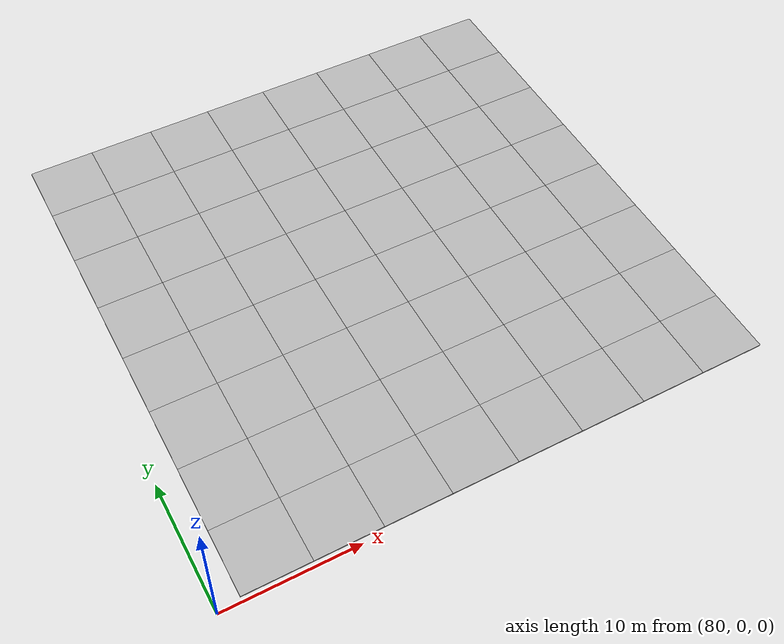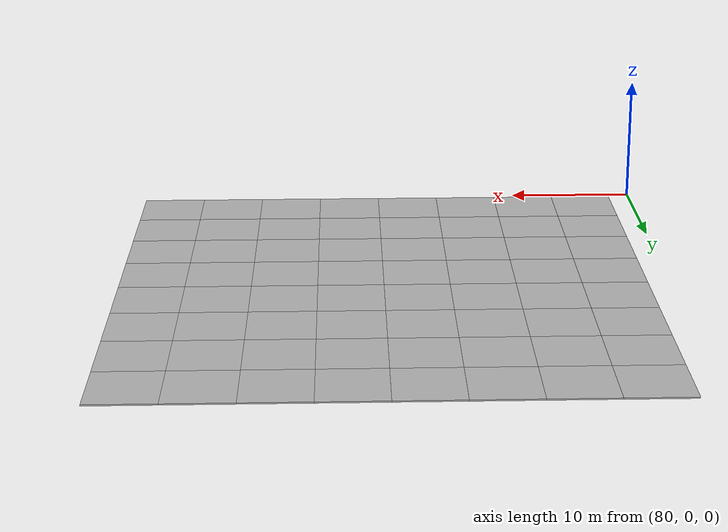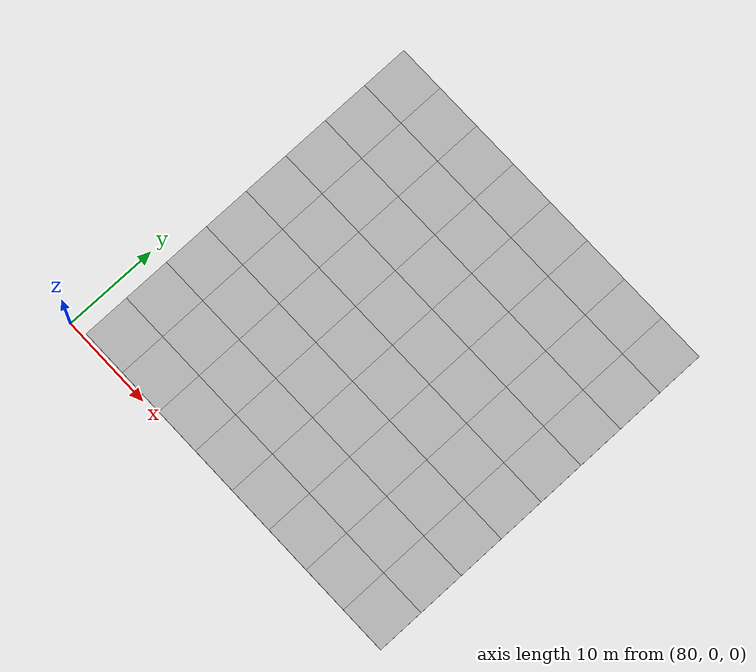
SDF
<sdf version="1.7">
 <world name="default">
  <model name="mud_plane_80x80_6">
   <model name="mud_plane_40x40_2">
    <model name="mud_plane_20x20">
     <model name="mud_plane">
      <static>1</static>
      <link name="link">
       <collision name="collision"><geometry><box><size>10 10 0.1</size></box></geometry></collision>
       <visual name="visual_1">
        <pose>-2.5 2.5 -0.05 0 -0 0</pose>
        <cast_shadows>0</cast_shadows>
        <geometry><box><size>5 5 0.1</size></box></geometry>
        <material>
         <script>
          <uri>model://mud_plane/materials/scripts</uri>
          <uri>model://mud_plane/materials/textures</uri>
          <name>vrc/mud</name>
         </script>
        </material>
       </visual>
       <visual name="visual_2">
        <pose>2.5 2.5 -0.05 0 -0 0</pose>
        <cast_shadows>0</cast_shadows>
        <geometry><box><size>5 5 0.1</size></box></geometry>
        <material>
         <script>
          <uri>model://mud_plane/materials/scripts</uri>
          <uri>model://mud_plane/materials/textures</uri>
          <name>vrc/mud</name>
         </script>
        </material>
       </visual>
       <visual name="visual_3">
        <pose>2.5 -2.5 -0.05 0 -0 0</pose>
        <cast_shadows>0</cast_shadows>
        <geometry><box><size>5 5 0.1</size></box></geometry>
        <material>
         <script>
          <uri>model://mud_plane/materials/scripts</uri>
          <uri>model://mud_plane/materials/textures</uri>
          <name>vrc/mud</name>
         </script>
        </material>
       </visual>
       <visual name="visual_4">
        <pose>-2.5 -2.5 -0.05 0 -0 0</pose>
        <cast_shadows>0</cast_shadows>
        <geometry><box><size>5 5 0.1</size></box></geometry>
        <material>
         <script>
          <uri>model://mud_plane/materials/scripts</uri>
          <uri>model://mud_plane/materials/textures</uri>
          <name>vrc/mud</name>
         </script>
        </material>
       </visual>
      </link>
      <pose>-4.99986 -4.99991 0 0 -0 0</pose>
     </model>
     <model name="mud_plane_0">
      <static>1</static>
      <link name="link">
       <collision name="collision"><geometry><box><size>10 10 0.1</size></box></geometry></collision>
       <visual name="visual_1">
        <pose>-2.5 2.5 -0.05 0 -0 0</pose>
        <cast_shadows>0</cast_shadows>
        <geometry><box><size>5 5 0.1</size></box></geometry>
        <material>
         <script>
          <uri>model://mud_plane/materials/scripts</uri>
          <uri>model://mud_plane/materials/textures</uri>
          <name>vrc/mud</name>
         </script>
        </material>
       </visual>
       <visual name="visual_2">
        <pose>2.5 2.5 -0.05 0 -0 0</pose>
        <cast_shadows>0</cast_shadows>
        <geometry><box><size>5 5 0.1</size></box></geometry>
        <material>
         <script>
          <uri>model://mud_plane/materials/scripts</uri>
          <uri>model://mud_plane/materials/textures</uri>
          <name>vrc/mud</name>
         </script>
        </material>
       </visual>
       <visual name="visual_3">
        <pose>2.5 -2.5 -0.05 0 -0 0</pose>
        <cast_shadows>0</cast_shadows>
        <geometry><box><size>5 5 0.1</size></box></geometry>
        <material>
         <script>
          <uri>model://mud_plane/materials/scripts</uri>
          <uri>model://mud_plane/materials/textures</uri>
          <name>vrc/mud</name>
         </script>
        </material>
       </visual>
       <visual name="visual_4">
        <pose>-2.5 -2.5 -0.05 0 -0 0</pose>
        <cast_shadows>0</cast_shadows>
        <geometry><box><size>5 5 0.1</size></box></geometry>
        <material>
         <script>
          <uri>model://mud_plane/materials/scripts</uri>
          <uri>model://mud_plane/materials/textures</uri>
          <name>vrc/mud</name>
         </script>
        </material>
       </visual>
      </link>
      <pose>-4.99946 4.99954 0 0 -0 0</pose>
     </model>
     <model name="mud_plane_1">
      <static>1</static>
      <link name="link">
       <collision name="collision"><geometry><box><size>10 10 0.1</size></box></geometry></collision>
       <visual name="visual_1">
        <pose>-2.5 2.5 -0.05 0 -0 0</pose>
        <cast_shadows>0</cast_shadows>
        <geometry><box><size>5 5 0.1</size></box></geometry>
        <material>
         <script>
          <uri>model://mud_plane/materials/scripts</uri>
          <uri>model://mud_plane/materials/textures</uri>
          <name>vrc/mud</name>
         </script>
        </material>
       </visual>
       <visual name="visual_2">
        <pose>2.5 2.5 -0.05 0 -0 0</pose>
        <cast_shadows>0</cast_shadows>
        <geometry><box><size>5 5 0.1</size></box></geometry>
        <material>
         <script>
          <uri>model://mud_plane/materials/scripts</uri>
          <uri>model://mud_plane/materials/textures</uri>
          <name>vrc/mud</name>
         </script>
        </material>
       </visual>
       <visual name="visual_3">
        <pose>2.5 -2.5 -0.05 0 -0 0</pose>
        <cast_shadows>0</cast_shadows>
        <geometry><box><size>5 5 0.1</size></box></geometry>
        <material>
         <script>
          <uri>model://mud_plane/materials/scripts</uri>
          <uri>model://mud_plane/materials/textures</uri>
          <name>vrc/mud</name>
         </script>
        </material>
       </visual>
       <visual name="visual_4">
        <pose>-2.5 -2.5 -0.05 0 -0 0</pose>
        <cast_shadows>0</cast_shadows>
        <geometry><box><size>5 5 0.1</size></box></geometry>
        <material>
         <script>
          <uri>model://mud_plane/materials/scripts</uri>
          <uri>model://mud_plane/materials/textures</uri>
          <name>vrc/mud</name>
         </script>
        </material>
       </visual>
      </link>
      <pose>4.99964 -4.99949 0 0 -0 0</pose>
     </model>
     <model name="mud_plane_2">
      <static>1</static>
      <link name="link">
       <collision name="collision"><geometry><box><size>10 10 0.1</size></box></geometry></collision>
       <visual name="visual_1">
        <pose>-2.5 2.5 -0.05 0 -0 0</pose>
        <cast_shadows>0</cast_shadows>
        <geometry><box><size>5 5 0.1</size></box></geometry>
        <material>
         <script>
          <uri>model://mud_plane/materials/scripts</uri>
          <uri>model://mud_plane/materials/textures</uri>
          <name>vrc/mud</name>
         </script>
        </material>
       </visual>
       <visual name="visual_2">
        <pose>2.5 2.5 -0.05 0 -0 0</pose>
        <cast_shadows>0</cast_shadows>
        <geometry><box><size>5 5 0.1</size></box></geometry>
        <material>
         <script>
          <uri>model://mud_plane/materials/scripts</uri>
          <uri>model://mud_plane/materials/textures</uri>
          <name>vrc/mud</name>
         </script>
        </material>
       </visual>
       <visual name="visual_3">
        <pose>2.5 -2.5 -0.05 0 -0 0</pose>
        <cast_shadows>0</cast_shadows>
        <geometry><box><size>5 5 0.1</size></box></geometry>
        <material>
         <script>
          <uri>model://mud_plane/materials/scripts</uri>
          <uri>model://mud_plane/materials/textures</uri>
          <name>vrc/mud</name>
         </script>
        </material>
       </visual>
       <visual name="visual_4">
        <pose>-2.5 -2.5 -0.05 0 -0 0</pose>
        <cast_shadows>0</cast_shadows>
        <geometry><box><size>5 5 0.1</size></box></geometry>
        <material>
         <script>
          <uri>model://mud_plane/materials/scripts</uri>
          <uri>model://mud_plane/materials/textures</uri>
          <name>vrc/mud</name>
         </script>
        </material>
       </visual>
      </link>
      <pose>4.99967 4.99986 0 0 -0 0</pose>
     </model>
     <static>0</static>
     <pose>-9.99895 9.99843 0 0 -0 0</pose>
    </model>
    <model name="mud_plane_20x20_0">
     <model name="mud_plane">
      <static>1</static>
      <link name="link">
       <collision name="collision"><geometry><box><size>10 10 0.1</size></box></geometry></collision>
       <visual name="visual_1">
        <pose>-2.5 2.5 -0.05 0 -0 0</pose>
        <cast_shadows>0</cast_shadows>
        <geometry><box><size>5 5 0.1</size></box></geometry>
        <material>
         <script>
          <uri>model://mud_plane/materials/scripts</uri>
          <uri>model://mud_plane/materials/textures</uri>
          <name>vrc/mud</name>
         </script>
        </material>
       </visual>
       <visual name="visual_2">
        <pose>2.5 2.5 -0.05 0 -0 0</pose>
        <cast_shadows>0</cast_shadows>
        <geometry><box><size>5 5 0.1</size></box></geometry>
        <material>
         <script>
          <uri>model://mud_plane/materials/scripts</uri>
          <uri>model://mud_plane/materials/textures</uri>
          <name>vrc/mud</name>
         </script>
        </material>
       </visual>
       <visual name="visual_3">
        <pose>2.5 -2.5 -0.05 0 -0 0</pose>
        <cast_shadows>0</cast_shadows>
        <geometry><box><size>5 5 0.1</size></box></geometry>
        <material>
         <script>
          <uri>model://mud_plane/materials/scripts</uri>
          <uri>model://mud_plane/materials/textures</uri>
          <name>vrc/mud</name>
         </script>
        </material>
       </visual>
       <visual name="visual_4">
        <pose>-2.5 -2.5 -0.05 0 -0 0</pose>
        <cast_shadows>0</cast_shadows>
        <geometry><box><size>5 5 0.1</size></box></geometry>
        <material>
         <script>
          <uri>model://mud_plane/materials/scripts</uri>
          <uri>model://mud_plane/materials/textures</uri>
          <name>vrc/mud</name>
         </script>
        </material>
       </visual>
      </link>
      <pose>-4.99986 -4.99991 0 0 -0 0</pose>
     </model>
     <model name="mud_plane_0">
      <static>1</static>
      <link name="link">
       <collision name="collision"><geometry><box><size>10 10 0.1</size></box></geometry></collision>
       <visual name="visual_1">
        <pose>-2.5 2.5 -0.05 0 -0 0</pose>
        <cast_shadows>0</cast_shadows>
        <geometry><box><size>5 5 0.1</size></box></geometry>
        <material>
         <script>
          <uri>model://mud_plane/materials/scripts</uri>
          <uri>model://mud_plane/materials/textures</uri>
          <name>vrc/mud</name>
         </script>
        </material>
       </visual>
       <visual name="visual_2">
        <pose>2.5 2.5 -0.05 0 -0 0</pose>
        <cast_shadows>0</cast_shadows>
        <geometry><box><size>5 5 0.1</size></box></geometry>
        <material>
         <script>
          <uri>model://mud_plane/materials/scripts</uri>
          <uri>model://mud_plane/materials/textures</uri>
          <name>vrc/mud</name>
         </script>
        </material>
       </visual>
       <visual name="visual_3">
        <pose>2.5 -2.5 -0.05 0 -0 0</pose>
        <cast_shadows>0</cast_shadows>
        <geometry><box><size>5 5 0.1</size></box></geometry>
        <material>
         <script>
          <uri>model://mud_plane/materials/scripts</uri>
          <uri>model://mud_plane/materials/textures</uri>
          <name>vrc/mud</name>
         </script>
        </material>
       </visual>
       <visual name="visual_4">
        <pose>-2.5 -2.5 -0.05 0 -0 0</pose>
        <cast_shadows>0</cast_shadows>
        <geometry><box><size>5 5 0.1</size></box></geometry>
        <material>
         <script>
          <uri>model://mud_plane/materials/scripts</uri>
          <uri>model://mud_plane/materials/textures</uri>
          <name>vrc/mud</name>
         </script>
        </material>
       </visual>
      </link>
      <pose>-4.99946 4.99954 0 0 -0 0</pose>
     </model>
     <model name="mud_plane_1">
      <static>1</static>
      <link name="link">
       <collision name="collision"><geometry><box><size>10 10 0.1</size></box></geometry></collision>
       <visual name="visual_1">
        <pose>-2.5 2.5 -0.05 0 -0 0</pose>
        <cast_shadows>0</cast_shadows>
        <geometry><box><size>5 5 0.1</size></box></geometry>
        <material>
         <script>
          <uri>model://mud_plane/materials/scripts</uri>
          <uri>model://mud_plane/materials/textures</uri>
          <name>vrc/mud</name>
         </script>
        </material>
       </visual>
       <visual name="visual_2">
        <pose>2.5 2.5 -0.05 0 -0 0</pose>
        <cast_shadows>0</cast_shadows>
        <geometry><box><size>5 5 0.1</size></box></geometry>
        <material>
         <script>
          <uri>model://mud_plane/materials/scripts</uri>
          <uri>model://mud_plane/materials/textures</uri>
          <name>vrc/mud</name>
         </script>
        </material>
       </visual>
       <visual name="visual_3">
        <pose>2.5 -2.5 -0.05 0 -0 0</pose>
        <cast_shadows>0</cast_shadows>
        <geometry><box><size>5 5 0.1</size></box></geometry>
        <material>
         <script>
          <uri>model://mud_plane/materials/scripts</uri>
          <uri>model://mud_plane/materials/textures</uri>
          <name>vrc/mud</name>
         </script>
        </material>
       </visual>
       <visual name="visual_4">
        <pose>-2.5 -2.5 -0.05 0 -0 0</pose>
        <cast_shadows>0</cast_shadows>
        <geometry><box><size>5 5 0.1</size></box></geometry>
        <material>
         <script>
          <uri>model://mud_plane/materials/scripts</uri>
          <uri>model://mud_plane/materials/textures</uri>
          <name>vrc/mud</name>
         </script>
        </material>
       </visual>
      </link>
      <pose>4.99964 -4.99949 0 0 -0 0</pose>
     </model>
     <model name="mud_plane_2">
      <static>1</static>
      <link name="link">
       <collision name="collision"><geometry><box><size>10 10 0.1</size></box></geometry></collision>
       <visual name="visual_1">
        <pose>-2.5 2.5 -0.05 0 -0 0</pose>
        <cast_shadows>0</cast_shadows>
        <geometry><box><size>5 5 0.1</size></box></geometry>
        <material>
         <script>
          <uri>model://mud_plane/materials/scripts</uri>
          <uri>model://mud_plane/materials/textures</uri>
          <name>vrc/mud</name>
         </script>
        </material>
       </visual>
       <visual name="visual_2">
        <pose>2.5 2.5 -0.05 0 -0 0</pose>
        <cast_shadows>0</cast_shadows>
        <geometry><box><size>5 5 0.1</size></box></geometry>
        <material>
         <script>
          <uri>model://mud_plane/materials/scripts</uri>
          <uri>model://mud_plane/materials/textures</uri>
          <name>vrc/mud</name>
         </script>
        </material>
       </visual>
       <visual name="visual_3">
        <pose>2.5 -2.5 -0.05 0 -0 0</pose>
        <cast_shadows>0</cast_shadows>
        <geometry><box><size>5 5 0.1</size></box></geometry>
        <material>
         <script>
          <uri>model://mud_plane/materials/scripts</uri>
          <uri>model://mud_plane/materials/textures</uri>
          <name>vrc/mud</name>
         </script>
        </material>
       </visual>
       <visual name="visual_4">
        <pose>-2.5 -2.5 -0.05 0 -0 0</pose>
        <cast_shadows>0</cast_shadows>
        <geometry><box><size>5 5 0.1</size></box></geometry>
        <material>
         <script>
          <uri>model://mud_plane/materials/scripts</uri>
          <uri>model://mud_plane/materials/textures</uri>
          <name>vrc/mud</name>
         </script>
        </material>
       </visual>
      </link>
      <pose>4.99967 4.99986 0 0 -0 0</pose>
     </model>
     <static>0</static>
     <pose>9.99933 9.9997 0 0 -0 0</pose>
    </model>
    <model name="mud_plane_20x20_1">
     <model name="mud_plane">
      <static>1</static>
      <link name="link">
       <collision name="collision"><geometry><box><size>10 10 0.1</size></box></geometry></collision>
       <visual name="visual_1">
        <pose>-2.5 2.5 -0.05 0 -0 0</pose>
        <cast_shadows>0</cast_shadows>
        <geometry><box><size>5 5 0.1</size></box></geometry>
        <material>
         <script>
          <uri>model://mud_plane/materials/scripts</uri>
          <uri>model://mud_plane/materials/textures</uri>
          <name>vrc/mud</name>
         </script>
        </material>
       </visual>
       <visual name="visual_2">
        <pose>2.5 2.5 -0.05 0 -0 0</pose>
        <cast_shadows>0</cast_shadows>
        <geometry><box><size>5 5 0.1</size></box></geometry>
        <material>
         <script>
          <uri>model://mud_plane/materials/scripts</uri>
          <uri>model://mud_plane/materials/textures</uri>
          <name>vrc/mud</name>
         </script>
        </material>
       </visual>
       <visual name="visual_3">
        <pose>2.5 -2.5 -0.05 0 -0 0</pose>
        <cast_shadows>0</cast_shadows>
        <geometry><box><size>5 5 0.1</size></box></geometry>
        <material>
         <script>
          <uri>model://mud_plane/materials/scripts</uri>
          <uri>model://mud_plane/materials/textures</uri>
          <name>vrc/mud</name>
         </script>
        </material>
       </visual>
       <visual name="visual_4">
        <pose>-2.5 -2.5 -0.05 0 -0 0</pose>
        <cast_shadows>0</cast_shadows>
        <geometry><box><size>5 5 0.1</size></box></geometry>
        <material>
         <script>
          <uri>model://mud_plane/materials/scripts</uri>
          <uri>model://mud_plane/materials/textures</uri>
          <name>vrc/mud</name>
         </script>
        </material>
       </visual>
      </link>
      <pose>-4.99986 -4.99991 0 0 -0 0</pose>
     </model>
     <model name="mud_plane_0">
      <static>1</static>
      <link name="link">
       <collision name="collision"><geometry><box><size>10 10 0.1</size></box></geometry></collision>
       <visual name="visual_1">
        <pose>-2.5 2.5 -0.05 0 -0 0</pose>
        <cast_shadows>0</cast_shadows>
        <geometry><box><size>5 5 0.1</size></box></geometry>
        <material>
         <script>
          <uri>model://mud_plane/materials/scripts</uri>
          <uri>model://mud_plane/materials/textures</uri>
          <name>vrc/mud</name>
         </script>
        </material>
       </visual>
       <visual name="visual_2">
        <pose>2.5 2.5 -0.05 0 -0 0</pose>
        <cast_shadows>0</cast_shadows>
        <geometry><box><size>5 5 0.1</size></box></geometry>
        <material>
         <script>
          <uri>model://mud_plane/materials/scripts</uri>
          <uri>model://mud_plane/materials/textures</uri>
          <name>vrc/mud</name>
         </script>
        </material>
       </visual>
       <visual name="visual_3">
        <pose>2.5 -2.5 -0.05 0 -0 0</pose>
        <cast_shadows>0</cast_shadows>
        <geometry><box><size>5 5 0.1</size></box></geometry>
        <material>
         <script>
          <uri>model://mud_plane/materials/scripts</uri>
          <uri>model://mud_plane/materials/textures</uri>
          <name>vrc/mud</name>
         </script>
        </material>
       </visual>
       <visual name="visual_4">
        <pose>-2.5 -2.5 -0.05 0 -0 0</pose>
        <cast_shadows>0</cast_shadows>
        <geometry><box><size>5 5 0.1</size></box></geometry>
        <material>
         <script>
          <uri>model://mud_plane/materials/scripts</uri>
          <uri>model://mud_plane/materials/textures</uri>
          <name>vrc/mud</name>
         </script>
        </material>
       </visual>
      </link>
      <pose>-4.99946 4.99954 0 0 -0 0</pose>
     </model>
     <model name="mud_plane_1">
      <static>1</static>
      <link name="link">
       <collision name="collision"><geometry><box><size>10 10 0.1</size></box></geometry></collision>
       <visual name="visual_1">
        <pose>-2.5 2.5 -0.05 0 -0 0</pose>
        <cast_shadows>0</cast_shadows>
        <geometry><box><size>5 5 0.1</size></box></geometry>
        <material>
         <script>
          <uri>model://mud_plane/materials/scripts</uri>
          <uri>model://mud_plane/materials/textures</uri>
          <name>vrc/mud</name>
         </script>
        </material>
       </visual>
       <visual name="visual_2">
        <pose>2.5 2.5 -0.05 0 -0 0</pose>
        <cast_shadows>0</cast_shadows>
        <geometry><box><size>5 5 0.1</size></box></geometry>
        <material>
         <script>
          <uri>model://mud_plane/materials/scripts</uri>
          <uri>model://mud_plane/materials/textures</uri>
          <name>vrc/mud</name>
         </script>
        </material>
       </visual>
       <visual name="visual_3">
        <pose>2.5 -2.5 -0.05 0 -0 0</pose>
        <cast_shadows>0</cast_shadows>
        <geometry><box><size>5 5 0.1</size></box></geometry>
        <material>
         <script>
          <uri>model://mud_plane/materials/scripts</uri>
          <uri>model://mud_plane/materials/textures</uri>
          <name>vrc/mud</name>
         </script>
        </material>
       </visual>
       <visual name="visual_4">
        <pose>-2.5 -2.5 -0.05 0 -0 0</pose>
        <cast_shadows>0</cast_shadows>
        <geometry><box><size>5 5 0.1</size></box></geometry>
        <material>
         <script>
          <uri>model://mud_plane/materials/scripts</uri>
          <uri>model://mud_plane/materials/textures</uri>
          <name>vrc/mud</name>
         </script>
        </material>
       </visual>
      </link>
      <pose>4.99964 -4.99949 0 0 -0 0</pose>
     </model>
     <model name="mud_plane_2">
      <static>1</static>
      <link name="link">
       <collision name="collision"><geometry><box><size>10 10 0.1</size></box></geometry></collision>
       <visual name="visual_1">
        <pose>-2.5 2.5 -0.05 0 -0 0</pose>
        <cast_shadows>0</cast_shadows>
        <geometry><box><size>5 5 0.1</size></box></geometry>
        <material>
         <script>
          <uri>model://mud_plane/materials/scripts</uri>
          <uri>model://mud_plane/materials/textures</uri>
          <name>vrc/mud</name>
         </script>
        </material>
       </visual>
       <visual name="visual_2">
        <pose>2.5 2.5 -0.05 0 -0 0</pose>
        <cast_shadows>0</cast_shadows>
        <geometry><box><size>5 5 0.1</size></box></geometry>
        <material>
         <script>
          <uri>model://mud_plane/materials/scripts</uri>
          <uri>model://mud_plane/materials/textures</uri>
          <name>vrc/mud</name>
         </script>
        </material>
       </visual>
       <visual name="visual_3">
        <pose>2.5 -2.5 -0.05 0 -0 0</pose>
        <cast_shadows>0</cast_shadows>
        <geometry><box><size>5 5 0.1</size></box></geometry>
        <material>
         <script>
          <uri>model://mud_plane/materials/scripts</uri>
          <uri>model://mud_plane/materials/textures</uri>
          <name>vrc/mud</name>
         </script>
        </material>
       </visual>
       <visual name="visual_4">
        <pose>-2.5 -2.5 -0.05 0 -0 0</pose>
        <cast_shadows>0</cast_shadows>
        <geometry><box><size>5 5 0.1</size></box></geometry>
        <material>
         <script>
          <uri>model://mud_plane/materials/scripts</uri>
          <uri>model://mud_plane/materials/textures</uri>
          <name>vrc/mud</name>
         </script>
        </material>
       </visual>
      </link>
      <pose>4.99967 4.99986 0 0 -0 0</pose>
     </model>
     <static>0</static>
     <pose>9.9993 -9.99877 0 0 -0 0</pose>
    </model>
    <model name="mud_plane_20x20_2">
     <model name="mud_plane">
      <static>1</static>
      <link name="link">
       <collision name="collision"><geometry><box><size>10 10 0.1</size></box></geometry></collision>
       <visual name="visual_1">
        <pose>-2.5 2.5 -0.05 0 -0 0</pose>
        <cast_shadows>0</cast_shadows>
        <geometry><box><size>5 5 0.1</size></box></geometry>
        <material>
         <script>
          <uri>model://mud_plane/materials/scripts</uri>
          <uri>model://mud_plane/materials/textures</uri>
          <name>vrc/mud</name>
         </script>
        </material>
       </visual>
       <visual name="visual_2">
        <pose>2.5 2.5 -0.05 0 -0 0</pose>
        <cast_shadows>0</cast_shadows>
        <geometry><box><size>5 5 0.1</size></box></geometry>
        <material>
         <script>
          <uri>model://mud_plane/materials/scripts</uri>
          <uri>model://mud_plane/materials/textures</uri>
          <name>vrc/mud</name>
         </script>
        </material>
       </visual>
       <visual name="visual_3">
        <pose>2.5 -2.5 -0.05 0 -0 0</pose>
        <cast_shadows>0</cast_shadows>
        <geometry><box><size>5 5 0.1</size></box></geometry>
        <material>
         <script>
          <uri>model://mud_plane/materials/scripts</uri>
          <uri>model://mud_plane/materials/textures</uri>
          <name>vrc/mud</name>
         </script>
        </material>
       </visual>
       <visual name="visual_4">
        <pose>-2.5 -2.5 -0.05 0 -0 0</pose>
        <cast_shadows>0</cast_shadows>
        <geometry><box><size>5 5 0.1</size></box></geometry>
        <material>
         <script>
          <uri>model://mud_plane/materials/scripts</uri>
          <uri>model://mud_plane/materials/textures</uri>
          <name>vrc/mud</name>
         </script>
        </material>
       </visual>
      </link>
      <pose>-4.99986 -4.99991 0 0 -0 0</pose>
     </model>
     <model name="mud_plane_0">
      <static>1</static>
      <link name="link">
       <collision name="collision"><geometry><box><size>10 10 0.1</size></box></geometry></collision>
       <visual name="visual_1">
        <pose>-2.5 2.5 -0.05 0 -0 0</pose>
        <cast_shadows>0</cast_shadows>
        <geometry><box><size>5 5 0.1</size></box></geometry>
        <material>
         <script>
          <uri>model://mud_plane/materials/scripts</uri>
          <uri>model://mud_plane/materials/textures</uri>
          <name>vrc/mud</name>
         </script>
        </material>
       </visual>
       <visual name="visual_2">
        <pose>2.5 2.5 -0.05 0 -0 0</pose>
        <cast_shadows>0</cast_shadows>
        <geometry><box><size>5 5 0.1</size></box></geometry>
        <material>
         <script>
          <uri>model://mud_plane/materials/scripts</uri>
          <uri>model://mud_plane/materials/textures</uri>
          <name>vrc/mud</name>
         </script>
        </material>
       </visual>
       <visual name="visual_3">
        <pose>2.5 -2.5 -0.05 0 -0 0</pose>
        <cast_shadows>0</cast_shadows>
        <geometry><box><size>5 5 0.1</size></box></geometry>
        <material>
         <script>
          <uri>model://mud_plane/materials/scripts</uri>
          <uri>model://mud_plane/materials/textures</uri>
          <name>vrc/mud</name>
         </script>
        </material>
       </visual>
       <visual name="visual_4">
        <pose>-2.5 -2.5 -0.05 0 -0 0</pose>
        <cast_shadows>0</cast_shadows>
        <geometry><box><size>5 5 0.1</size></box></geometry>
        <material>
         <script>
          <uri>model://mud_plane/materials/scripts</uri>
          <uri>model://mud_plane/materials/textures</uri>
          <name>vrc/mud</name>
         </script>
        </material>
       </visual>
      </link>
      <pose>-4.99946 4.99954 0 0 -0 0</pose>
     </model>
     <model name="mud_plane_1">
      <static>1</static>
      <link name="link">
       <collision name="collision"><geometry><box><size>10 10 0.1</size></box></geometry></collision>
       <visual name="visual_1">
        <pose>-2.5 2.5 -0.05 0 -0 0</pose>
        <cast_shadows>0</cast_shadows>
        <geometry><box><size>5 5 0.1</size></box></geometry>
        <material>
         <script>
          <uri>model://mud_plane/materials/scripts</uri>
          <uri>model://mud_plane/materials/textures</uri>
          <name>vrc/mud</name>
         </script>
        </material>
       </visual>
       <visual name="visual_2">
        <pose>2.5 2.5 -0.05 0 -0 0</pose>
        <cast_shadows>0</cast_shadows>
        <geometry><box><size>5 5 0.1</size></box></geometry>
        <material>
         <script>
          <uri>model://mud_plane/materials/scripts</uri>
          <uri>model://mud_plane/materials/textures</uri>
          <name>vrc/mud</name>
         </script>
        </material>
       </visual>
       <visual name="visual_3">
        <pose>2.5 -2.5 -0.05 0 -0 0</pose>
        <cast_shadows>0</cast_shadows>
        <geometry><box><size>5 5 0.1</size></box></geometry>
        <material>
         <script>
          <uri>model://mud_plane/materials/scripts</uri>
          <uri>model://mud_plane/materials/textures</uri>
          <name>vrc/mud</name>
         </script>
        </material>
       </visual>
       <visual name="visual_4">
        <pose>-2.5 -2.5 -0.05 0 -0 0</pose>
        <cast_shadows>0</cast_shadows>
        <geometry><box><size>5 5 0.1</size></box></geometry>
        <material>
         <script>
          <uri>model://mud_plane/materials/scripts</uri>
          <uri>model://mud_plane/materials/textures</uri>
          <name>vrc/mud</name>
         </script>
        </material>
       </visual>
      </link>
      <pose>4.99964 -4.99949 0 0 -0 0</pose>
     </model>
     <model name="mud_plane_2">
      <static>1</static>
      <link name="link">
       <collision name="collision"><geometry><box><size>10 10 0.1</size></box></geometry></collision>
       <visual name="visual_1">
        <pose>-2.5 2.5 -0.05 0 -0 0</pose>
        <cast_shadows>0</cast_shadows>
        <geometry><box><size>5 5 0.1</size></box></geometry>
        <material>
         <script>
          <uri>model://mud_plane/materials/scripts</uri>
          <uri>model://mud_plane/materials/textures</uri>
          <name>vrc/mud</name>
         </script>
        </material>
       </visual>
       <visual name="visual_2">
        <pose>2.5 2.5 -0.05 0 -0 0</pose>
        <cast_shadows>0</cast_shadows>
        <geometry><box><size>5 5 0.1</size></box></geometry>
        <material>
         <script>
          <uri>model://mud_plane/materials/scripts</uri>
          <uri>model://mud_plane/materials/textures</uri>
          <name>vrc/mud</name>
         </script>
        </material>
       </visual>
       <visual name="visual_3">
        <pose>2.5 -2.5 -0.05 0 -0 0</pose>
        <cast_shadows>0</cast_shadows>
        <geometry><box><size>5 5 0.1</size></box></geometry>
        <material>
         <script>
          <uri>model://mud_plane/materials/scripts</uri>
          <uri>model://mud_plane/materials/textures</uri>
          <name>vrc/mud</name>
         </script>
        </material>
       </visual>
       <visual name="visual_4">
        <pose>-2.5 -2.5 -0.05 0 -0 0</pose>
        <cast_shadows>0</cast_shadows>
        <geometry><box><size>5 5 0.1</size></box></geometry>
        <material>
         <script>
          <uri>model://mud_plane/materials/scripts</uri>
          <uri>model://mud_plane/materials/textures</uri>
          <name>vrc/mud</name>
         </script>
        </material>
       </visual>
      </link>
      <pose>4.99967 4.99986 0 0 -0 0</pose>
     </model>
     <static>0</static>
     <pose>-9.99969 -9.99935 0 0 -0 0</pose>
    </model>
    <static>0</static>
    <pose>-19.9989 -19.9993 0 0 -0 0</pose>
   </model>
   <static>0</static>
   <pose>121.689 40.3973 0 0 -0 0</pose>
  </model>
 </world>
</sdf>
